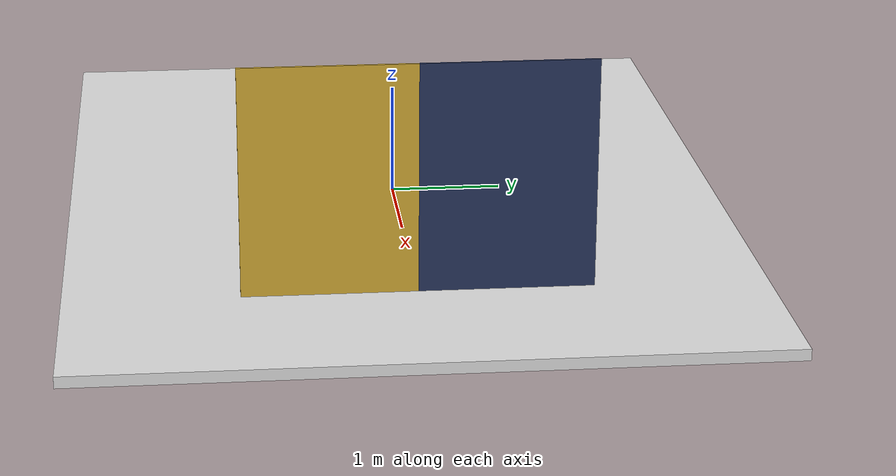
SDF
<?xml version="1.0"?>
<sdf version="1.6">
  <world name="inspection">
    <!-- Inline assets keep startup independent of the Gazebo model database. -->
    <gravity>0 0 -9.81</gravity>
    <physics name="inspection_ode" type="ode">
      <max_step_size>0.001</max_step_size>
      <real_time_factor>1</real_time_factor>
      <real_time_update_rate>1000</real_time_update_rate>
      <ode><solver><type>quick</type><iters>50</iters><sor>1.3</sor></solver></ode>
    </physics>
    <scene><ambient>0.6 0.6 0.6 1</ambient><background>0.7 0.7 0.7 1</background><shadows>false</shadows></scene>
    <light name="inspection_sun" type="directional">
      <pose>0 0 5 0 0 0</pose>
      <diffuse>0.8 0.8 0.8 1</diffuse><specular>0.1 0.1 0.1 1</specular>
      <direction>-0.3 0.1 -1</direction><cast_shadows>false</cast_shadows>
    </light>
    <model name="floor">
      <static>true</static>
      <link name="floor_link">
        <pose>0 0 -0.05 0 0 0</pose>
        <collision name="floor_collision">
          <geometry><box><size>8 6 0.1</size></box></geometry>
          <surface><friction><ode><mu>1</mu><mu2>1</mu2></ode></friction></surface>
        </collision>
        <visual name="floor_visual">
          <geometry><box><size>8 6 0.1</size></box></geometry>
          <material><ambient>0.85 0.85 0.85 1</ambient><diffuse>0.85 0.85 0.85 1</diffuse></material>
        </visual>
      </link>
    </model>
    <model name="line_2m_30mm">
      <static>true</static>
      <link name="line_link">
        <!-- 2 m circular arc, radius 6 m, width 30 mm; tangent +X at start.
             Visual only: the walking surface remains flat. -->
        <visual name="line_00">
          <pose>0.02499971 0.00010417 0.0002 0 0 0.00416667</pose>
          <geometry><box><size>0.05019986 0.03 0.0002</size></box></geometry>
          <material><ambient>0.01 0.01 0.01 1</ambient><diffuse>0.01 0.01 0.01 1</diffuse></material>
        </visual>
        <visual name="line_01">
          <pose>0.07499740 0.00052082 0.0002 0 0 0.01250000</pose>
          <geometry><box><size>0.05019986 0.03 0.0002</size></box></geometry>
          <material><ambient>0.01 0.01 0.01 1</ambient><diffuse>0.01 0.01 0.01 1</diffuse></material>
        </visual>
        <visual name="line_02">
          <pose>0.12498987 0.00135411 0.0002 0 0 0.02083333</pose>
          <geometry><box><size>0.05019986 0.03 0.0002</size></box></geometry>
          <material><ambient>0.01 0.01 0.01 1</ambient><diffuse>0.01 0.01 0.01 1</diffuse></material>
        </visual>
        <visual name="line_03">
          <pose>0.17497367 0.00260396 0.0002 0 0 0.02916667</pose>
          <geometry><box><size>0.05019986 0.03 0.0002</size></box></geometry>
          <material><ambient>0.01 0.01 0.01 1</ambient><diffuse>0.01 0.01 0.01 1</diffuse></material>
        </visual>
        <visual name="line_04">
          <pose>0.22494532 0.00427030 0.0002 0 0 0.03750000</pose>
          <geometry><box><size>0.05019986 0.03 0.0002</size></box></geometry>
          <material><ambient>0.01 0.01 0.01 1</ambient><diffuse>0.01 0.01 0.01 1</diffuse></material>
        </visual>
        <visual name="line_05">
          <pose>0.27490134 0.00635301 0.0002 0 0 0.04583333</pose>
          <geometry><box><size>0.05019986 0.03 0.0002</size></box></geometry>
          <material><ambient>0.01 0.01 0.01 1</ambient><diffuse>0.01 0.01 0.01 1</diffuse></material>
        </visual>
        <visual name="line_06">
          <pose>0.32483828 0.00885194 0.0002 0 0 0.05416667</pose>
          <geometry><box><size>0.05019986 0.03 0.0002</size></box></geometry>
          <material><ambient>0.01 0.01 0.01 1</ambient><diffuse>0.01 0.01 0.01 1</diffuse></material>
        </visual>
        <visual name="line_07">
          <pose>0.37475265 0.01176692 0.0002 0 0 0.06250000</pose>
          <geometry><box><size>0.05019986 0.03 0.0002</size></box></geometry>
          <material><ambient>0.01 0.01 0.01 1</ambient><diffuse>0.01 0.01 0.01 1</diffuse></material>
        </visual>
        <visual name="line_08">
          <pose>0.42464101 0.01509774 0.0002 0 0 0.07083333</pose>
          <geometry><box><size>0.05019986 0.03 0.0002</size></box></geometry>
          <material><ambient>0.01 0.01 0.01 1</ambient><diffuse>0.01 0.01 0.01 1</diffuse></material>
        </visual>
        <visual name="line_09">
          <pose>0.47449987 0.01884419 0.0002 0 0 0.07916667</pose>
          <geometry><box><size>0.05019986 0.03 0.0002</size></box></geometry>
          <material><ambient>0.01 0.01 0.01 1</ambient><diffuse>0.01 0.01 0.01 1</diffuse></material>
        </visual>
        <visual name="line_10">
          <pose>0.52432578 0.02300598 0.0002 0 0 0.08750000</pose>
          <geometry><box><size>0.05019986 0.03 0.0002</size></box></geometry>
          <material><ambient>0.01 0.01 0.01 1</ambient><diffuse>0.01 0.01 0.01 1</diffuse></material>
        </visual>
        <visual name="line_11">
          <pose>0.57411528 0.02758285 0.0002 0 0 0.09583333</pose>
          <geometry><box><size>0.05019986 0.03 0.0002</size></box></geometry>
          <material><ambient>0.01 0.01 0.01 1</ambient><diffuse>0.01 0.01 0.01 1</diffuse></material>
        </visual>
        <visual name="line_12">
          <pose>0.62386492 0.03257446 0.0002 0 0 0.10416667</pose>
          <geometry><box><size>0.05019986 0.03 0.0002</size></box></geometry>
          <material><ambient>0.01 0.01 0.01 1</ambient><diffuse>0.01 0.01 0.01 1</diffuse></material>
        </visual>
        <visual name="line_13">
          <pose>0.67357123 0.03798048 0.0002 0 0 0.11250000</pose>
          <geometry><box><size>0.05019986 0.03 0.0002</size></box></geometry>
          <material><ambient>0.01 0.01 0.01 1</ambient><diffuse>0.01 0.01 0.01 1</diffuse></material>
        </visual>
        <visual name="line_14">
          <pose>0.72323076 0.04380052 0.0002 0 0 0.12083333</pose>
          <geometry><box><size>0.05019986 0.03 0.0002</size></box></geometry>
          <material><ambient>0.01 0.01 0.01 1</ambient><diffuse>0.01 0.01 0.01 1</diffuse></material>
        </visual>
        <visual name="line_15">
          <pose>0.77284007 0.05003418 0.0002 0 0 0.12916667</pose>
          <geometry><box><size>0.05019986 0.03 0.0002</size></box></geometry>
          <material><ambient>0.01 0.01 0.01 1</ambient><diffuse>0.01 0.01 0.01 1</diffuse></material>
        </visual>
        <visual name="line_16">
          <pose>0.82239571 0.05668104 0.0002 0 0 0.13750000</pose>
          <geometry><box><size>0.05019986 0.03 0.0002</size></box></geometry>
          <material><ambient>0.01 0.01 0.01 1</ambient><diffuse>0.01 0.01 0.01 1</diffuse></material>
        </visual>
        <visual name="line_17">
          <pose>0.87189424 0.06374062 0.0002 0 0 0.14583333</pose>
          <geometry><box><size>0.05019986 0.03 0.0002</size></box></geometry>
          <material><ambient>0.01 0.01 0.01 1</ambient><diffuse>0.01 0.01 0.01 1</diffuse></material>
        </visual>
        <visual name="line_18">
          <pose>0.92133222 0.07121244 0.0002 0 0 0.15416667</pose>
          <geometry><box><size>0.05019986 0.03 0.0002</size></box></geometry>
          <material><ambient>0.01 0.01 0.01 1</ambient><diffuse>0.01 0.01 0.01 1</diffuse></material>
        </visual>
        <visual name="line_19">
          <pose>0.97070622 0.07909598 0.0002 0 0 0.16250000</pose>
          <geometry><box><size>0.05019986 0.03 0.0002</size></box></geometry>
          <material><ambient>0.01 0.01 0.01 1</ambient><diffuse>0.01 0.01 0.01 1</diffuse></material>
        </visual>
        <visual name="line_20">
          <pose>1.02001281 0.08739069 0.0002 0 0 0.17083333</pose>
          <geometry><box><size>0.05019986 0.03 0.0002</size></box></geometry>
          <material><ambient>0.01 0.01 0.01 1</ambient><diffuse>0.01 0.01 0.01 1</diffuse></material>
        </visual>
        <visual name="line_21">
          <pose>1.06924857 0.09609599 0.0002 0 0 0.17916667</pose>
          <geometry><box><size>0.05019986 0.03 0.0002</size></box></geometry>
          <material><ambient>0.01 0.01 0.01 1</ambient><diffuse>0.01 0.01 0.01 1</diffuse></material>
        </visual>
        <visual name="line_22">
          <pose>1.11841007 0.10521129 0.0002 0 0 0.18750000</pose>
          <geometry><box><size>0.05019986 0.03 0.0002</size></box></geometry>
          <material><ambient>0.01 0.01 0.01 1</ambient><diffuse>0.01 0.01 0.01 1</diffuse></material>
        </visual>
        <visual name="line_23">
          <pose>1.16749391 0.11473595 0.0002 0 0 0.19583333</pose>
          <geometry><box><size>0.05019986 0.03 0.0002</size></box></geometry>
          <material><ambient>0.01 0.01 0.01 1</ambient><diffuse>0.01 0.01 0.01 1</diffuse></material>
        </visual>
        <visual name="line_24">
          <pose>1.21649667 0.12466930 0.0002 0 0 0.20416667</pose>
          <geometry><box><size>0.05019986 0.03 0.0002</size></box></geometry>
          <material><ambient>0.01 0.01 0.01 1</ambient><diffuse>0.01 0.01 0.01 1</diffuse></material>
        </visual>
        <visual name="line_25">
          <pose>1.26541495 0.13501066 0.0002 0 0 0.21250000</pose>
          <geometry><box><size>0.05019986 0.03 0.0002</size></box></geometry>
          <material><ambient>0.01 0.01 0.01 1</ambient><diffuse>0.01 0.01 0.01 1</diffuse></material>
        </visual>
        <visual name="line_26">
          <pose>1.31424536 0.14575930 0.0002 0 0 0.22083333</pose>
          <geometry><box><size>0.05019986 0.03 0.0002</size></box></geometry>
          <material><ambient>0.01 0.01 0.01 1</ambient><diffuse>0.01 0.01 0.01 1</diffuse></material>
        </visual>
        <visual name="line_27">
          <pose>1.36298450 0.15691449 0.0002 0 0 0.22916667</pose>
          <geometry><box><size>0.05019986 0.03 0.0002</size></box></geometry>
          <material><ambient>0.01 0.01 0.01 1</ambient><diffuse>0.01 0.01 0.01 1</diffuse></material>
        </visual>
        <visual name="line_28">
          <pose>1.41162899 0.16847545 0.0002 0 0 0.23750000</pose>
          <geometry><box><size>0.05019986 0.03 0.0002</size></box></geometry>
          <material><ambient>0.01 0.01 0.01 1</ambient><diffuse>0.01 0.01 0.01 1</diffuse></material>
        </visual>
        <visual name="line_29">
          <pose>1.46017545 0.18044137 0.0002 0 0 0.24583333</pose>
          <geometry><box><size>0.05019986 0.03 0.0002</size></box></geometry>
          <material><ambient>0.01 0.01 0.01 1</ambient><diffuse>0.01 0.01 0.01 1</diffuse></material>
        </visual>
        <visual name="line_30">
          <pose>1.50862051 0.19281142 0.0002 0 0 0.25416667</pose>
          <geometry><box><size>0.05019986 0.03 0.0002</size></box></geometry>
          <material><ambient>0.01 0.01 0.01 1</ambient><diffuse>0.01 0.01 0.01 1</diffuse></material>
        </visual>
        <visual name="line_31">
          <pose>1.55696081 0.20558475 0.0002 0 0 0.26250000</pose>
          <geometry><box><size>0.05019986 0.03 0.0002</size></box></geometry>
          <material><ambient>0.01 0.01 0.01 1</ambient><diffuse>0.01 0.01 0.01 1</diffuse></material>
        </visual>
        <visual name="line_32">
          <pose>1.60519298 0.21876047 0.0002 0 0 0.27083333</pose>
          <geometry><box><size>0.05019986 0.03 0.0002</size></box></geometry>
          <material><ambient>0.01 0.01 0.01 1</ambient><diffuse>0.01 0.01 0.01 1</diffuse></material>
        </visual>
        <visual name="line_33">
          <pose>1.65331369 0.23233766 0.0002 0 0 0.27916667</pose>
          <geometry><box><size>0.05019986 0.03 0.0002</size></box></geometry>
          <material><ambient>0.01 0.01 0.01 1</ambient><diffuse>0.01 0.01 0.01 1</diffuse></material>
        </visual>
        <visual name="line_34">
          <pose>1.70131958 0.24631538 0.0002 0 0 0.28750000</pose>
          <geometry><box><size>0.05019986 0.03 0.0002</size></box></geometry>
          <material><ambient>0.01 0.01 0.01 1</ambient><diffuse>0.01 0.01 0.01 1</diffuse></material>
        </visual>
        <visual name="line_35">
          <pose>1.74920732 0.26069266 0.0002 0 0 0.29583333</pose>
          <geometry><box><size>0.05019986 0.03 0.0002</size></box></geometry>
          <material><ambient>0.01 0.01 0.01 1</ambient><diffuse>0.01 0.01 0.01 1</diffuse></material>
        </visual>
        <visual name="line_36">
          <pose>1.79697359 0.27546850 0.0002 0 0 0.30416667</pose>
          <geometry><box><size>0.05019986 0.03 0.0002</size></box></geometry>
          <material><ambient>0.01 0.01 0.01 1</ambient><diffuse>0.01 0.01 0.01 1</diffuse></material>
        </visual>
        <visual name="line_37">
          <pose>1.84461508 0.29064187 0.0002 0 0 0.31250000</pose>
          <geometry><box><size>0.05019986 0.03 0.0002</size></box></geometry>
          <material><ambient>0.01 0.01 0.01 1</ambient><diffuse>0.01 0.01 0.01 1</diffuse></material>
        </visual>
        <visual name="line_38">
          <pose>1.89212846 0.30621173 0.0002 0 0 0.32083333</pose>
          <geometry><box><size>0.05019986 0.03 0.0002</size></box></geometry>
          <material><ambient>0.01 0.01 0.01 1</ambient><diffuse>0.01 0.01 0.01 1</diffuse></material>
        </visual>
        <visual name="line_39">
          <pose>1.93951045 0.32217698 0.0002 0 0 0.32916667</pose>
          <geometry><box><size>0.05019986 0.03 0.0002</size></box></geometry>
          <material><ambient>0.01 0.01 0.01 1</ambient><diffuse>0.01 0.01 0.01 1</diffuse></material>
        </visual>
      </link>
    </model>
    <model name="inspection_backdrop">
      <static>true</static>
      <link name="backdrop_link">
        <!-- Visual fixture for the fixed upstream camera, with no collision. -->
        <visual name="backdrop_left">
          <pose>2.5 0.75 1 0 0 0</pose>
          <geometry><box><size>0.02 1.5 2</size></box></geometry>
          <material><ambient>0.15 0.2 0.35 1</ambient><diffuse>0.15 0.2 0.35 1</diffuse></material>
        </visual>
        <visual name="backdrop_right">
          <pose>2.5 -0.75 1 0 0 0</pose>
          <geometry><box><size>0.02 1.5 2</size></box></geometry>
          <material><ambient>0.8 0.65 0.2 1</ambient><diffuse>0.8 0.65 0.2 1</diffuse></material>
        </visual>
      </link>
    </model>
  </world>
</sdf>
